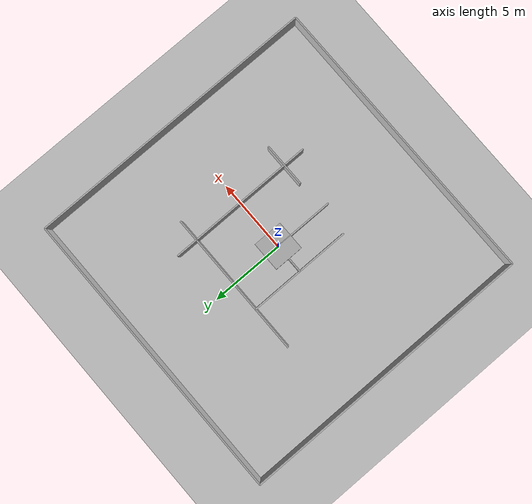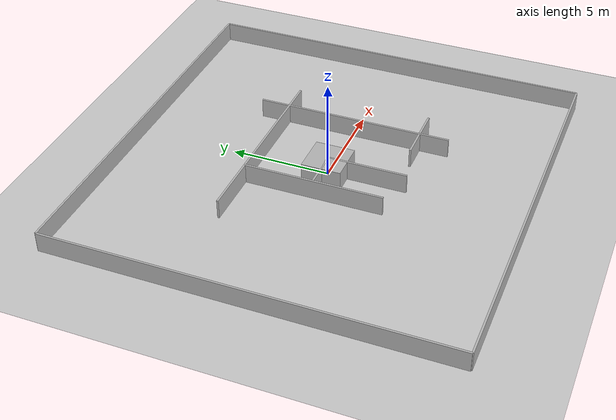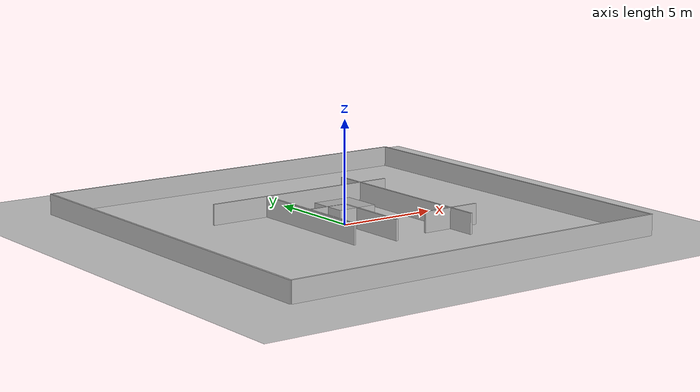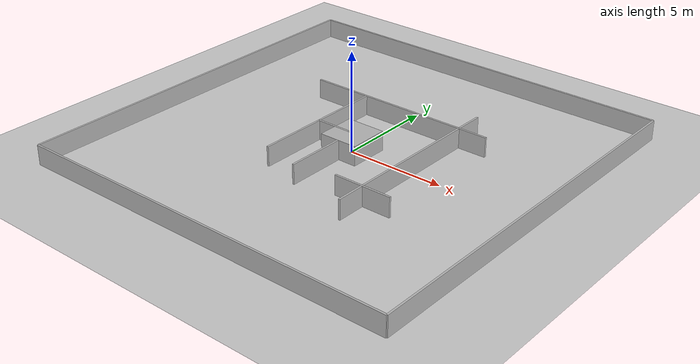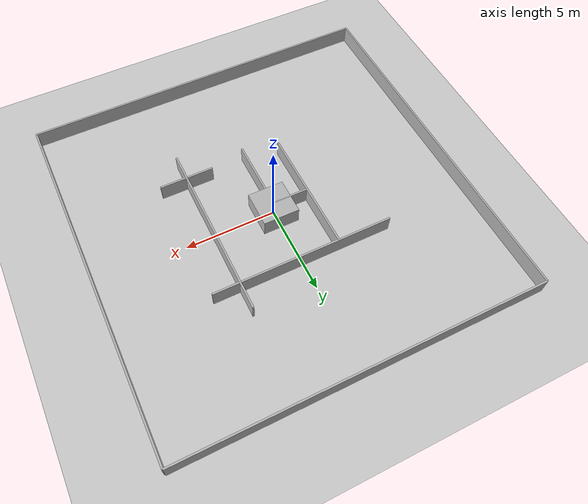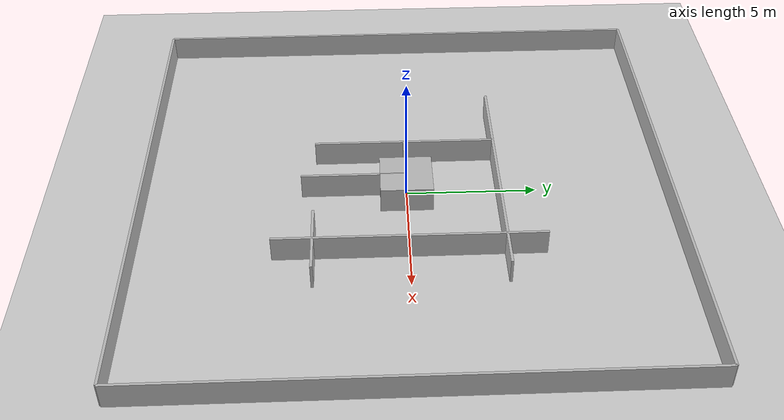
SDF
<?xml version="1.0" ?>
<sdf version="1.6">
  <world name="box_world">

    <plugin name="gazebo_ros_state" filename="libgazebo_ros_state.so">
      <ros>
        <namespace>/test</namespace>
        <argument>model_states:=model_states_demo</argument>
      </ros>
      <update_rate>1.0</update_rate>
    </plugin>

    <gui fullscreen='0'>
      <camera name='user_camera'>
        <pose>0 -8 35 0 1.5698 0</pose>
        <view_controller>orbit</view_controller>
        <projection_type>perspective</projection_type>
      </camera>
    </gui>

    <include>
      <uri>model://ground_plane</uri>
    </include>
    <include>
      <uri>model://sun</uri>
    </include>

    <!-- ================= OUTER WALLS ================= -->

    <model name="wall_front">
      <static>true</static>
      <pose>0 10 0.5 0 0 0</pose>
      <link name="link">
        <collision name="collision">
          <geometry><box><size>20 0.1 1</size></box></geometry>
        </collision>
        <visual name="visual">
          <geometry><box><size>20 0.1 1</size></box></geometry>
        </visual>
      </link>
    </model>

    <model name="wall_back">
      <static>true</static>
      <pose>0 -10 0.5 0 0 0</pose>
      <link name="link">
        <collision name="collision">
          <geometry><box><size>20 0.1 1</size></box></geometry>
        </collision>
        <visual name="visual">
          <geometry><box><size>20 0.1 1</size></box></geometry>
        </visual>
      </link>
    </model>

    <model name="wall_left">
      <static>true</static>
      <pose>-10 0 0.5 0 0 0</pose>
      <link name="link">
        <collision name="collision">
          <geometry><box><size>0.1 20 1</size></box></geometry>
        </collision>
        <visual name="visual">
          <geometry><box><size>0.1 20 1</size></box></geometry>
        </visual>
      </link>
    </model>

    <model name="wall_right">
      <static>true</static>
      <pose>10 0 0.5 0 0 0</pose>
      <link name="link">
        <collision name="collision">
          <geometry><box><size>0.1 20 1</size></box></geometry>
        </collision>
        <visual name="visual">
          <geometry><box><size>0.1 20 1</size></box></geometry>
        </visual>
      </link>
    </model>

    <!-- ================= LABYRINTH WALLS ================= -->

    <!-- Horizontal -->
    <model name="wall_h1">
      <static>true</static>
      <pose>0 3.5 0.5 0 0 0</pose>
      <link name="link">
        <collision name="collision">
          <geometry><box><size>10 0.1 1</size></box></geometry>
        </collision>
        <visual name="visual">
          <geometry><box><size>10 0.1 1</size></box></geometry>
        </visual>
      </link>
    </model>

    <!-- wall_h2 LEFT -->
    <model name="wall_h2_left">
    <static>true</static>
    <pose>-1 0 0.5 0 0 0</pose>
    <link name="link">
        <collision name="collision">
        <geometry>
            <box>
            <size>2 0.1 1</size>
            </box>
        </geometry>
        </collision>
        <visual name="visual">
        <geometry>
            <box>
            <size>2 0.1 1</size>
            </box>
        </geometry>
        </visual>
    </link>
    </model>

    <!-- wall_h2 RIGHT -->
    <model name="wall_h2_right">
    <static>true</static>
    <pose>3.5 -3.5 0.5 0 0 0</pose>
    <link name="link">
        <collision name="collision">
        <geometry>
            <box>
            <size>3 0.1 1</size>
            </box>
        </geometry>
        </collision>
        <visual name="visual">
        <geometry>
            <box>
            <size>3 0.1 1</size>
            </box>
        </geometry>
        </visual>
    </link>
    </model>

    <!-- Vertical -->
    <model name="wall_v1">
      <static>true</static>
      <pose>-2 0 0.5 0 0 0</pose>
      <link name="link">
        <collision name="collision">
          <geometry><box><size>0.1 7 1</size></box></geometry>
        </collision>
        <visual name="visual">
          <geometry><box><size>0.1 7 1</size></box></geometry>
        </visual>
      </link>
    </model>

    <model name="wall_v2">
      <static>true</static>
      <pose>3.5 0 0.5 0 0 0</pose>
      <link name="link">
        <collision name="collision">
          <geometry><box><size>0.1 10 1</size></box></geometry>
        </collision>
        <visual name="visual">
          <geometry><box><size>0.1 10 1</size></box></geometry>
        </visual>
      </link>
    </model>

    <model name="wall_v3">
      <static>true</static>
      <pose>0 -2 0.5 0 0 0</pose>
      <link name="link">
        <collision name="collision">
          <geometry><box><size>0.1 4 1</size></box></geometry>
        </collision>
        <visual name="visual">
          <geometry><box><size>0.1 4 1</size></box></geometry>
        </visual>
      </link>
    </model>

    <!-- Center obstacle -->
    <model name="center_block">
      <static>true</static>
      <pose>0 0 0.5 0 0 0</pose>
      <link name="link">
        <collision name="collision">
          <geometry><box><size>2 2 1</size></box></geometry>
        </collision>
        <visual name="visual">
          <geometry><box><size>2 2 1</size></box></geometry>
        </visual>
      </link>
    </model>

  </world>
</sdf>
